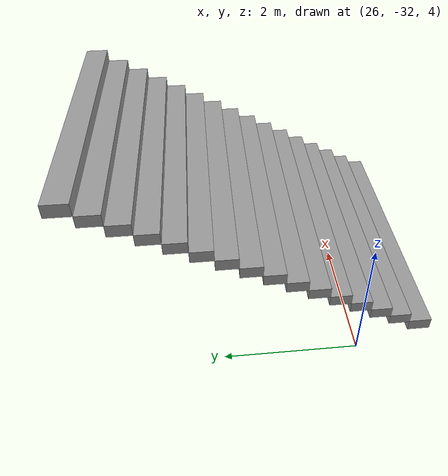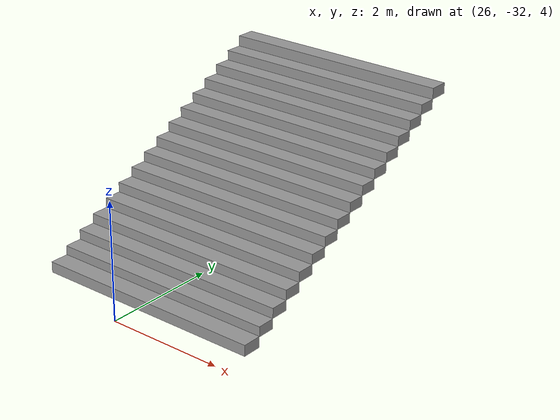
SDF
<sdf version="1.7">
 <world name="world">
  <include><uri>model://sun</uri></include>
  <model name="stairs_new_clone">
   <pose>27.35 -34.334000 5.065 0 -0 1.570796</pose>
   <link name="Stairs">
    <pose>3 1e-06 0 0 -0 0</pose>
    <inertial>
     <mass>1</mass>
     <inertia><ixx>1</ixx><ixy>0</ixy><ixz>0</ixz><iyy>1</iyy><iyz>0</iyz><izz>1</izz></inertia>
    </inertial>
    <visual name="Stairs_Visual_7">
     <pose>0.70875 0 1.09375 0 -0 1.5708</pose>
     <geometry><box><size>3.66 0.28125 0.15625</size></box></geometry>
     <material>
      <script><uri>file://media/materials/scripts/gazebo.material</uri><name>Gazebo/Grey</name></script>
      <ambient>1 1 1 1</ambient>
      <shader type="pixel"><normal_map>__default__</normal_map></shader>
      <diffuse>0.7 0.7 0.7 1</diffuse>
      <specular>0.01 0.01 0.01 1</specular>
      <emissive>0 0 0 1</emissive>
     </material>
     <meta><layer>0</layer></meta>
    </visual>
    <visual name="Stairs_Visual_10">
     <pose>1.5525 0 1.5625 0 -0 1.5708</pose>
     <geometry><box><size>3.66 0.28125 0.15625</size></box></geometry>
     <material>
      <script><uri>file://media/materials/scripts/gazebo.material</uri><name>Gazebo/Grey</name></script>
      <ambient>1 1 1 1</ambient>
      <shader type="pixel"><normal_map>__default__</normal_map></shader>
      <diffuse>0.7 0.7 0.7 1</diffuse>
      <specular>0.01 0.01 0.01 1</specular>
      <emissive>0 0 0 1</emissive>
     </material>
     <meta><layer>0</layer></meta>
    </visual>
    <visual name="Stairs_Visual_11">
     <pose>1.83375 0 1.71875 0 -0 1.5708</pose>
     <geometry><box><size>3.66 0.28125 0.15625</size></box></geometry>
     <material>
      <script><uri>file://media/materials/scripts/gazebo.material</uri><name>Gazebo/Grey</name></script>
      <ambient>1 1 1 1</ambient>
      <shader type="pixel"><normal_map>__default__</normal_map></shader>
      <diffuse>0.7 0.7 0.7 1</diffuse>
      <specular>0.01 0.01 0.01 1</specular>
      <emissive>0 0 0 1</emissive>
     </material>
     <meta><layer>0</layer></meta>
    </visual>
    <visual name="Stairs_Visual_1">
     <pose>-0.97875 0 0.15625 0 -0 1.5708</pose>
     <geometry><box><size>3.66 0.28125 0.15625</size></box></geometry>
     <material>
      <script><uri>file://media/materials/scripts/gazebo.material</uri><name>Gazebo/Grey</name></script>
      <ambient>1 1 1 1</ambient>
      <shader type="pixel"><normal_map>__default__</normal_map></shader>
      <diffuse>0.7 0.7 0.7 1</diffuse>
      <specular>0.01 0.01 0.01 1</specular>
      <emissive>0 0 0 1</emissive>
     </material>
     <meta><layer>0</layer></meta>
    </visual>
    <visual name="Stairs_Visual_8">
     <pose>0.99 0 1.25 0 -0 1.5708</pose>
     <geometry><box><size>3.66 0.28125 0.15625</size></box></geometry>
     <material>
      <script><uri>file://media/materials/scripts/gazebo.material</uri><name>Gazebo/Grey</name></script>
      <ambient>1 1 1 1</ambient>
      <shader type="pixel"><normal_map>__default__</normal_map></shader>
      <diffuse>0.7 0.7 0.7 1</diffuse>
      <specular>0.01 0.01 0.01 1</specular>
      <emissive>0 0 0 1</emissive>
     </material>
     <meta><layer>0</layer></meta>
    </visual>
    <visual name="Stairs_Visual_2">
     <pose>-0.6975 0 0.3125 0 -0 1.5708</pose>
     <geometry><box><size>3.66 0.28125 0.15625</size></box></geometry>
     <material>
      <script><uri>file://media/materials/scripts/gazebo.material</uri><name>Gazebo/Grey</name></script>
      <ambient>1 1 1 1</ambient>
      <shader type="pixel"><normal_map>__default__</normal_map></shader>
      <diffuse>0.7 0.7 0.7 1</diffuse>
      <specular>0.01 0.01 0.01 1</specular>
      <emissive>0 0 0 1</emissive>
     </material>
     <meta><layer>0</layer></meta>
    </visual>
    <visual name="Stairs_Visual_0">
     <pose>-1.27 0 0.005 0 -0 1.5708</pose>
     <geometry><box><size>3.66 0.3 0.17</size></box></geometry>
     <material>
      <script><uri>file://media/materials/scripts/gazebo.material</uri><name>Gazebo/Grey</name></script>
      <ambient>1 1 1 1</ambient>
      <shader type="pixel"><normal_map>__default__</normal_map></shader>
      <diffuse>0.7 0.7 0.7 1</diffuse>
      <specular>0.01 0.01 0.01 1</specular>
      <emissive>0 0 0 1</emissive>
     </material>
     <meta><layer>0</layer></meta>
    </visual>
    <visual name="Stairs_Visual_12">
     <pose>2.115 0 1.875 0 -0 1.5708</pose>
     <geometry><box><size>3.66 0.28125 0.15625</size></box></geometry>
     <material>
      <script><uri>file://media/materials/scripts/gazebo.material</uri><name>Gazebo/Grey</name></script>
      <ambient>1 1 1 1</ambient>
      <shader type="pixel"><normal_map>__default__</normal_map></shader>
      <diffuse>0.7 0.7 0.7 1</diffuse>
      <specular>0.01 0.01 0.01 1</specular>
      <emissive>0 0 0 1</emissive>
     </material>
     <meta><layer>0</layer></meta>
    </visual>
    <visual name="Stairs_Visual_9">
     <pose>1.27125 0 1.40625 0 -0 1.5708</pose>
     <geometry><box><size>3.66 0.28125 0.15625</size></box></geometry>
     <material>
      <script><uri>file://media/materials/scripts/gazebo.material</uri><name>Gazebo/Grey</name></script>
      <ambient>1 1 1 1</ambient>
      <shader type="pixel"><normal_map>__default__</normal_map></shader>
      <diffuse>0.7 0.7 0.7 1</diffuse>
      <specular>0.01 0.01 0.01 1</specular>
      <emissive>0 0 0 1</emissive>
     </material>
     <meta><layer>0</layer></meta>
    </visual>
    <visual name="Stairs_Visual_13">
     <pose>2.39625 0 2.03125 0 -0 1.5708</pose>
     <geometry><box><size>3.66 0.28125 0.15625</size></box></geometry>
     <material>
      <script><uri>file://media/materials/scripts/gazebo.material</uri><name>Gazebo/Grey</name></script>
      <ambient>1 1 1 1</ambient>
      <shader type="pixel"><normal_map>__default__</normal_map></shader>
      <diffuse>0.7 0.7 0.7 1</diffuse>
      <specular>0.01 0.01 0.01 1</specular>
      <emissive>0 0 0 1</emissive>
     </material>
     <meta><layer>0</layer></meta>
    </visual>
    <visual name="Stairs_Visual_4">
     <pose>-0.135 0 0.625 0 -0 1.5708</pose>
     <geometry><box><size>3.66 0.28125 0.15625</size></box></geometry>
     <material>
      <script><uri>file://media/materials/scripts/gazebo.material</uri><name>Gazebo/Grey</name></script>
      <ambient>1 1 1 1</ambient>
      <shader type="pixel"><normal_map>__default__</normal_map></shader>
      <diffuse>0.7 0.7 0.7 1</diffuse>
      <specular>0.01 0.01 0.01 1</specular>
      <emissive>0 0 0 1</emissive>
     </material>
     <meta><layer>0</layer></meta>
    </visual>
    <visual name="Stairs_Visual_5">
     <pose>0.14625 0 0.78125 0 -0 1.5708</pose>
     <geometry><box><size>3.66 0.28125 0.15625</size></box></geometry>
     <material>
      <script><uri>file://media/materials/scripts/gazebo.material</uri><name>Gazebo/Grey</name></script>
      <ambient>1 1 1 1</ambient>
      <shader type="pixel"><normal_map>__default__</normal_map></shader>
      <diffuse>0.7 0.7 0.7 1</diffuse>
      <specular>0.01 0.01 0.01 1</specular>
      <emissive>0 0 0 1</emissive>
     </material>
     <meta><layer>0</layer></meta>
    </visual>
    <visual name="Stairs_Visual_15">
     <pose>2.969 0 2.35 0 -0 1.5708</pose>
     <geometry><box><size>3.66 0.3 0.17</size></box></geometry>
     <material>
      <script><uri>file://media/materials/scripts/gazebo.material</uri><name>Gazebo/Grey</name></script>
      <ambient>1 1 1 1</ambient>
      <shader type="pixel"><normal_map>__default__</normal_map></shader>
      <diffuse>0.7 0.7 0.7 1</diffuse>
      <specular>0.01 0.01 0.01 1</specular>
      <emissive>0 0 0 1</emissive>
     </material>
     <meta><layer>0</layer></meta>
    </visual>
    <visual name="Stairs_Visual_3">
     <pose>-0.41625 0 0.46875 0 -0 1.5708</pose>
     <geometry><box><size>3.66 0.28125 0.15625</size></box></geometry>
     <material>
      <script><uri>file://media/materials/scripts/gazebo.material</uri><name>Gazebo/Grey</name></script>
      <ambient>1 1 1 1</ambient>
      <shader type="pixel"><normal_map>__default__</normal_map></shader>
      <diffuse>0.7 0.7 0.7 1</diffuse>
      <specular>0.01 0.01 0.01 1</specular>
      <emissive>0 0 0 1</emissive>
     </material>
     <meta><layer>0</layer></meta>
    </visual>
    <visual name="Stairs_Visual_6">
     <pose>0.4275 0 0.9375 0 -0 1.5708</pose>
     <geometry><box><size>3.66 0.28125 0.15625</size></box></geometry>
     <material>
      <script><uri>file://media/materials/scripts/gazebo.material</uri><name>Gazebo/Grey</name></script>
      <ambient>1 1 1 1</ambient>
      <shader type="pixel"><normal_map>__default__</normal_map></shader>
      <diffuse>0.7 0.7 0.7 1</diffuse>
      <specular>0.01 0.01 0.01 1</specular>
      <emissive>0 0 0 1</emissive>
     </material>
     <meta><layer>0</layer></meta>
    </visual>
    <visual name="Stairs_Visual_14">
     <pose>2.6775 0 2.1875 0 -0 1.5708</pose>
     <geometry><box><size>3.66 0.28125 0.15625</size></box></geometry>
     <material>
      <script><uri>file://media/materials/scripts/gazebo.material</uri><name>Gazebo/Grey</name></script>
      <ambient>1 1 1 1</ambient>
      <shader type="pixel"><normal_map>__default__</normal_map></shader>
      <diffuse>0.7 0.7 0.7 1</diffuse>
      <specular>0.01 0.01 0.01 1</specular>
      <emissive>0 0 0 1</emissive>
     </material>
     <meta><layer>0</layer></meta>
    </visual>
    <collision name="Stairs_Collision_9">
     <pose>1.27125 0 1.40625 0 -0 1.5708</pose>
     <geometry><box><size>3.66 0.28125 0.15625</size></box></geometry>
     <surface>
      <friction>
       <ode><mu>1</mu><mu2>1</mu2><fdir1>0 0 0</fdir1><slip1>0</slip1><slip2>0</slip2></ode>
       <torsional>
        <coefficient>1</coefficient>
        <patch_radius>0</patch_radius>
        <surface_radius>0</surface_radius>
        <use_patch_radius>1</use_patch_radius>
        <ode><slip>0</slip></ode>
       </torsional>
      </friction>
      <bounce><restitution_coefficient>0</restitution_coefficient><threshold>1e+06</threshold></bounce>
      <contact>
       <collide_without_contact>0</collide_without_contact>
       <collide_without_contact_bitmask>1</collide_without_contact_bitmask>
       <collide_bitmask>1</collide_bitmask>
       <ode>
        <soft_cfm>0</soft_cfm>
        <soft_erp>0.2</soft_erp>
        <kp>1e+13</kp>
        <kd>1</kd>
        <max_vel>0.01</max_vel>
        <min_depth>0</min_depth>
       </ode>
       <bullet>
        <split_impulse>1</split_impulse>
        <split_impulse_penetration_threshold>-0.01</split_impulse_penetration_threshold>
        <soft_cfm>0</soft_cfm>
        <soft_erp>0.2</soft_erp>
        <kp>1e+13</kp>
        <kd>1</kd>
       </bullet>
      </contact>
     </surface>
    </collision>
    <collision name="Stairs_Collision_1">
     <pose>-0.97875 0 0.15625 0 -0 1.5708</pose>
     <geometry><box><size>3.66 0.3 0.1566</size></box></geometry>
     <surface>
      <friction>
       <ode><mu>1</mu><mu2>1</mu2><fdir1>0 0 0</fdir1><slip1>0</slip1><slip2>0</slip2></ode>
       <torsional>
        <coefficient>1</coefficient>
        <patch_radius>0</patch_radius>
        <surface_radius>0</surface_radius>
        <use_patch_radius>1</use_patch_radius>
        <ode><slip>0</slip></ode>
       </torsional>
      </friction>
      <bounce><restitution_coefficient>0</restitution_coefficient><threshold>1e+06</threshold></bounce>
      <contact>
       <collide_without_contact>0</collide_without_contact>
       <collide_without_contact_bitmask>1</collide_without_contact_bitmask>
       <collide_bitmask>1</collide_bitmask>
       <ode>
        <soft_cfm>0</soft_cfm>
        <soft_erp>0.2</soft_erp>
        <kp>1e+13</kp>
        <kd>1</kd>
        <max_vel>0.01</max_vel>
        <min_depth>0</min_depth>
       </ode>
       <bullet>
        <split_impulse>1</split_impulse>
        <split_impulse_penetration_threshold>-0.01</split_impulse_penetration_threshold>
        <soft_cfm>0</soft_cfm>
        <soft_erp>0.2</soft_erp>
        <kp>1e+13</kp>
        <kd>1</kd>
       </bullet>
      </contact>
     </surface>
    </collision>
    <collision name="Stairs_Collision_6">
     <pose>0.4275 0 0.9375 0 -0 1.5708</pose>
     <geometry><box><size>3.66 0.28125 0.15625</size></box></geometry>
     <surface>
      <friction>
       <ode><mu>1</mu><mu2>1</mu2><fdir1>0 0 0</fdir1><slip1>0</slip1><slip2>0</slip2></ode>
       <torsional>
        <coefficient>1</coefficient>
        <patch_radius>0</patch_radius>
        <surface_radius>0</surface_radius>
        <use_patch_radius>1</use_patch_radius>
        <ode><slip>0</slip></ode>
       </torsional>
      </friction>
      <bounce><restitution_coefficient>0</restitution_coefficient><threshold>1e+06</threshold></bounce>
      <contact>
       <collide_without_contact>0</collide_without_contact>
       <collide_without_contact_bitmask>1</collide_without_contact_bitmask>
       <collide_bitmask>1</collide_bitmask>
       <ode>
        <soft_cfm>0</soft_cfm>
        <soft_erp>0.2</soft_erp>
        <kp>1e+13</kp>
        <kd>1</kd>
        <max_vel>0.01</max_vel>
        <min_depth>0</min_depth>
       </ode>
       <bullet>
        <split_impulse>1</split_impulse>
        <split_impulse_penetration_threshold>-0.01</split_impulse_penetration_threshold>
        <soft_cfm>0</soft_cfm>
        <soft_erp>0.2</soft_erp>
        <kp>1e+13</kp>
        <kd>1</kd>
       </bullet>
      </contact>
     </surface>
    </collision>
    <collision name="Stairs_Collision_7">
     <pose>0.70875 0 1.09375 0 -0 1.5708</pose>
     <geometry><box><size>3.66 0.28125 0.15625</size></box></geometry>
     <surface>
      <friction>
       <ode><mu>1</mu><mu2>1</mu2><fdir1>0 0 0</fdir1><slip1>0</slip1><slip2>0</slip2></ode>
       <torsional>
        <coefficient>1</coefficient>
        <patch_radius>0</patch_radius>
        <surface_radius>0</surface_radius>
        <use_patch_radius>1</use_patch_radius>
        <ode><slip>0</slip></ode>
       </torsional>
      </friction>
      <bounce><restitution_coefficient>0</restitution_coefficient><threshold>1e+06</threshold></bounce>
      <contact>
       <collide_without_contact>0</collide_without_contact>
       <collide_without_contact_bitmask>1</collide_without_contact_bitmask>
       <collide_bitmask>1</collide_bitmask>
       <ode>
        <soft_cfm>0</soft_cfm>
        <soft_erp>0.2</soft_erp>
        <kp>1e+13</kp>
        <kd>1</kd>
        <max_vel>0.01</max_vel>
        <min_depth>0</min_depth>
       </ode>
       <bullet>
        <split_impulse>1</split_impulse>
        <split_impulse_penetration_threshold>-0.01</split_impulse_penetration_threshold>
        <soft_cfm>0</soft_cfm>
        <soft_erp>0.2</soft_erp>
        <kp>1e+13</kp>
        <kd>1</kd>
       </bullet>
      </contact>
     </surface>
    </collision>
    <collision name="Stairs_Collision_5">
     <pose>0.14625 0 0.78125 0 -0 1.5708</pose>
     <geometry><box><size>3.66 0.28125 0.15625</size></box></geometry>
     <surface>
      <friction>
       <ode><mu>1</mu><mu2>1</mu2><fdir1>0 0 0</fdir1><slip1>0</slip1><slip2>0</slip2></ode>
       <torsional>
        <coefficient>1</coefficient>
        <patch_radius>0</patch_radius>
        <surface_radius>0</surface_radius>
        <use_patch_radius>1</use_patch_radius>
        <ode><slip>0</slip></ode>
       </torsional>
      </friction>
      <bounce><restitution_coefficient>0</restitution_coefficient><threshold>1e+06</threshold></bounce>
      <contact>
       <collide_without_contact>0</collide_without_contact>
       <collide_without_contact_bitmask>1</collide_without_contact_bitmask>
       <collide_bitmask>1</collide_bitmask>
       <ode>
        <soft_cfm>0</soft_cfm>
        <soft_erp>0.2</soft_erp>
        <kp>1e+13</kp>
        <kd>1</kd>
        <max_vel>0.01</max_vel>
        <min_depth>0</min_depth>
       </ode>
       <bullet>
        <split_impulse>1</split_impulse>
        <split_impulse_penetration_threshold>-0.01</split_impulse_penetration_threshold>
        <soft_cfm>0</soft_cfm>
        <soft_erp>0.2</soft_erp>
        <kp>1e+13</kp>
        <kd>1</kd>
       </bullet>
      </contact>
     </surface>
    </collision>
    <collision name="Stairs_Collision_10">
     <pose>1.5525 0 1.5625 0 -0 1.5708</pose>
     <geometry><box><size>3.66 0.28125 0.15625</size></box></geometry>
     <surface>
      <friction>
       <ode><mu>1</mu><mu2>1</mu2><fdir1>0 0 0</fdir1><slip1>0</slip1><slip2>0</slip2></ode>
       <torsional>
        <coefficient>1</coefficient>
        <patch_radius>0</patch_radius>
        <surface_radius>0</surface_radius>
        <use_patch_radius>1</use_patch_radius>
        <ode><slip>0</slip></ode>
       </torsional>
      </friction>
      <bounce><restitution_coefficient>0</restitution_coefficient><threshold>1e+06</threshold></bounce>
      <contact>
       <collide_without_contact>0</collide_without_contact>
       <collide_without_contact_bitmask>1</collide_without_contact_bitmask>
       <collide_bitmask>1</collide_bitmask>
       <ode>
        <soft_cfm>0</soft_cfm>
        <soft_erp>0.2</soft_erp>
        <kp>1e+13</kp>
        <kd>1</kd>
        <max_vel>0.01</max_vel>
        <min_depth>0</min_depth>
       </ode>
       <bullet>
        <split_impulse>1</split_impulse>
        <split_impulse_penetration_threshold>-0.01</split_impulse_penetration_threshold>
        <soft_cfm>0</soft_cfm>
        <soft_erp>0.2</soft_erp>
        <kp>1e+13</kp>
        <kd>1</kd>
       </bullet>
      </contact>
     </surface>
    </collision>
    <collision name="Stairs_Collision_2">
     <pose>-0.6975 0 0.3125 0 -0 1.5708</pose>
     <geometry><box><size>3.66 0.28125 0.15625</size></box></geometry>
     <surface>
      <friction>
       <ode><mu>1</mu><mu2>1</mu2><fdir1>0 0 0</fdir1><slip1>0</slip1><slip2>0</slip2></ode>
       <torsional>
        <coefficient>1</coefficient>
        <patch_radius>0</patch_radius>
        <surface_radius>0</surface_radius>
        <use_patch_radius>1</use_patch_radius>
        <ode><slip>0</slip></ode>
       </torsional>
      </friction>
      <bounce><restitution_coefficient>0</restitution_coefficient><threshold>1e+06</threshold></bounce>
      <contact>
       <collide_without_contact>0</collide_without_contact>
       <collide_without_contact_bitmask>1</collide_without_contact_bitmask>
       <collide_bitmask>1</collide_bitmask>
       <ode>
        <soft_cfm>0</soft_cfm>
        <soft_erp>0.2</soft_erp>
        <kp>1e+13</kp>
        <kd>1</kd>
        <max_vel>0.01</max_vel>
        <min_depth>0</min_depth>
       </ode>
       <bullet>
        <split_impulse>1</split_impulse>
        <split_impulse_penetration_threshold>-0.01</split_impulse_penetration_threshold>
        <soft_cfm>0</soft_cfm>
        <soft_erp>0.2</soft_erp>
        <kp>1e+13</kp>
        <kd>1</kd>
       </bullet>
      </contact>
     </surface>
    </collision>
    <collision name="Stairs_Collision_8">
     <pose>0.99 0 1.25 0 -0 1.5708</pose>
     <geometry><box><size>3.66 0.28125 0.15625</size></box></geometry>
     <surface>
      <friction>
       <ode><mu>1</mu><mu2>1</mu2><fdir1>0 0 0</fdir1><slip1>0</slip1><slip2>0</slip2></ode>
       <torsional>
        <coefficient>1</coefficient>
        <patch_radius>0</patch_radius>
        <surface_radius>0</surface_radius>
        <use_patch_radius>1</use_patch_radius>
        <ode><slip>0</slip></ode>
       </torsional>
      </friction>
      <bounce><restitution_coefficient>0</restitution_coefficient><threshold>1e+06</threshold></bounce>
      <contact>
       <collide_without_contact>0</collide_without_contact>
       <collide_without_contact_bitmask>1</collide_without_contact_bitmask>
       <collide_bitmask>1</collide_bitmask>
       <ode>
        <soft_cfm>0</soft_cfm>
        <soft_erp>0.2</soft_erp>
        <kp>1e+13</kp>
        <kd>1</kd>
        <max_vel>0.01</max_vel>
        <min_depth>0</min_depth>
       </ode>
       <bullet>
        <split_impulse>1</split_impulse>
        <split_impulse_penetration_threshold>-0.01</split_impulse_penetration_threshold>
        <soft_cfm>0</soft_cfm>
        <soft_erp>0.2</soft_erp>
        <kp>1e+13</kp>
        <kd>1</kd>
       </bullet>
      </contact>
     </surface>
    </collision>
    <collision name="Stairs_Collision_4">
     <pose>-0.135 0 0.625 0 -0 1.5708</pose>
     <geometry><box><size>3.66 0.30125 0.15625</size></box></geometry>
     <surface>
      <friction>
       <ode><mu>1</mu><mu2>1</mu2><fdir1>0 0 0</fdir1><slip1>0</slip1><slip2>0</slip2></ode>
       <torsional>
        <coefficient>1</coefficient>
        <patch_radius>0</patch_radius>
        <surface_radius>0</surface_radius>
        <use_patch_radius>1</use_patch_radius>
        <ode><slip>0</slip></ode>
       </torsional>
      </friction>
      <bounce><restitution_coefficient>0</restitution_coefficient><threshold>1e+06</threshold></bounce>
      <contact>
       <collide_without_contact>0</collide_without_contact>
       <collide_without_contact_bitmask>1</collide_without_contact_bitmask>
       <collide_bitmask>1</collide_bitmask>
       <ode>
        <soft_cfm>0</soft_cfm>
        <soft_erp>0.2</soft_erp>
        <kp>1e+13</kp>
        <kd>1</kd>
        <max_vel>0.01</max_vel>
        <min_depth>0</min_depth>
       </ode>
       <bullet>
        <split_impulse>1</split_impulse>
        <split_impulse_penetration_threshold>-0.01</split_impulse_penetration_threshold>
        <soft_cfm>0</soft_cfm>
        <soft_erp>0.2</soft_erp>
        <kp>1e+13</kp>
        <kd>1</kd>
       </bullet>
      </contact>
     </surface>
    </collision>
    <collision name="Stairs_Collision_13">
     <pose>2.39625 0 2.03125 0 -0 1.5708</pose>
     <geometry><box><size>3.66 0.28125 0.15625</size></box></geometry>
     <surface>
      <friction>
       <ode><mu>1</mu><mu2>1</mu2><fdir1>0 0 0</fdir1><slip1>0</slip1><slip2>0</slip2></ode>
       <torsional>
        <coefficient>1</coefficient>
        <patch_radius>0</patch_radius>
        <surface_radius>0</surface_radius>
        <use_patch_radius>1</use_patch_radius>
        <ode><slip>0</slip></ode>
       </torsional>
      </friction>
      <bounce><restitution_coefficient>0</restitution_coefficient><threshold>1e+06</threshold></bounce>
      <contact>
       <collide_without_contact>0</collide_without_contact>
       <collide_without_contact_bitmask>1</collide_without_contact_bitmask>
       <collide_bitmask>1</collide_bitmask>
       <ode>
        <soft_cfm>0</soft_cfm>
        <soft_erp>0.2</soft_erp>
        <kp>1e+13</kp>
        <kd>1</kd>
        <max_vel>0.01</max_vel>
        <min_depth>0</min_depth>
       </ode>
       <bullet>
        <split_impulse>1</split_impulse>
        <split_impulse_penetration_threshold>-0.01</split_impulse_penetration_threshold>
        <soft_cfm>0</soft_cfm>
        <soft_erp>0.2</soft_erp>
        <kp>1e+13</kp>
        <kd>1</kd>
       </bullet>
      </contact>
     </surface>
    </collision>
    <collision name="Stairs_Collision_11">
     <pose>1.83375 0 1.71875 0 -0 1.5708</pose>
     <geometry><box><size>3.66 0.28125 0.15625</size></box></geometry>
     <surface>
      <friction>
       <ode><mu>1</mu><mu2>1</mu2><fdir1>0 0 0</fdir1><slip1>0</slip1><slip2>0</slip2></ode>
       <torsional>
        <coefficient>1</coefficient>
        <patch_radius>0</patch_radius>
        <surface_radius>0</surface_radius>
        <use_patch_radius>1</use_patch_radius>
        <ode><slip>0</slip></ode>
       </torsional>
      </friction>
      <bounce><restitution_coefficient>0</restitution_coefficient><threshold>1e+06</threshold></bounce>
      <contact>
       <collide_without_contact>0</collide_without_contact>
       <collide_without_contact_bitmask>1</collide_without_contact_bitmask>
       <collide_bitmask>1</collide_bitmask>
       <ode>
        <soft_cfm>0</soft_cfm>
        <soft_erp>0.2</soft_erp>
        <kp>1e+13</kp>
        <kd>1</kd>
        <max_vel>0.01</max_vel>
        <min_depth>0</min_depth>
       </ode>
       <bullet>
        <split_impulse>1</split_impulse>
        <split_impulse_penetration_threshold>-0.01</split_impulse_penetration_threshold>
        <soft_cfm>0</soft_cfm>
        <soft_erp>0.2</soft_erp>
        <kp>1e+13</kp>
        <kd>1</kd>
       </bullet>
      </contact>
     </surface>
    </collision>
    <collision name="Stairs_Collision_0">
     <pose>-1.27 0 -0.005 0 -0 1.5708</pose>
     <geometry><box><size>3.66 0.3 0.2</size></box></geometry>
     <surface>
      <friction>
       <ode><mu>1</mu><mu2>1</mu2><fdir1>0 0 0</fdir1><slip1>0</slip1><slip2>0</slip2></ode>
       <torsional>
        <coefficient>1</coefficient>
        <patch_radius>0</patch_radius>
        <surface_radius>0</surface_radius>
        <use_patch_radius>1</use_patch_radius>
        <ode><slip>0</slip></ode>
       </torsional>
      </friction>
      <bounce><restitution_coefficient>0</restitution_coefficient><threshold>1e+06</threshold></bounce>
      <contact>
       <collide_without_contact>0</collide_without_contact>
       <collide_without_contact_bitmask>1</collide_without_contact_bitmask>
       <collide_bitmask>1</collide_bitmask>
       <ode>
        <soft_cfm>0</soft_cfm>
        <soft_erp>0.2</soft_erp>
        <kp>1e+13</kp>
        <kd>1</kd>
        <max_vel>0.01</max_vel>
        <min_depth>0</min_depth>
       </ode>
       <bullet>
        <split_impulse>1</split_impulse>
        <split_impulse_penetration_threshold>-0.01</split_impulse_penetration_threshold>
        <soft_cfm>0</soft_cfm>
        <soft_erp>0.2</soft_erp>
        <kp>1e+13</kp>
        <kd>1</kd>
       </bullet>
      </contact>
     </surface>
    </collision>
    <collision name="Stairs_Collision_3">
     <pose>-0.41625 0 0.46875 0 -0 1.5708</pose>
     <geometry><box><size>3.66 0.28125 0.15625</size></box></geometry>
     <surface>
      <friction>
       <ode><mu>1</mu><mu2>1</mu2><fdir1>0 0 0</fdir1><slip1>0</slip1><slip2>0</slip2></ode>
       <torsional>
        <coefficient>1</coefficient>
        <patch_radius>0</patch_radius>
        <surface_radius>0</surface_radius>
        <use_patch_radius>1</use_patch_radius>
        <ode><slip>0</slip></ode>
       </torsional>
      </friction>
      <bounce><restitution_coefficient>0</restitution_coefficient><threshold>1e+06</threshold></bounce>
      <contact>
       <collide_without_contact>0</collide_without_contact>
       <collide_without_contact_bitmask>1</collide_without_contact_bitmask>
       <collide_bitmask>1</collide_bitmask>
       <ode>
        <soft_cfm>0</soft_cfm>
        <soft_erp>0.2</soft_erp>
        <kp>1e+13</kp>
        <kd>1</kd>
        <max_vel>0.01</max_vel>
        <min_depth>0</min_depth>
       </ode>
       <bullet>
        <split_impulse>1</split_impulse>
        <split_impulse_penetration_threshold>-0.01</split_impulse_penetration_threshold>
        <soft_cfm>0</soft_cfm>
        <soft_erp>0.2</soft_erp>
        <kp>1e+13</kp>
        <kd>1</kd>
       </bullet>
      </contact>
     </surface>
    </collision>
    <collision name="Stairs_Collision_12">
     <pose>2.115 0 1.875 0 -0 1.5708</pose>
     <geometry><box><size>3.66 0.28125 0.15625</size></box></geometry>
     <surface>
      <friction>
       <ode><mu>1</mu><mu2>1</mu2><fdir1>0 0 0</fdir1><slip1>0</slip1><slip2>0</slip2></ode>
       <torsional>
        <coefficient>1</coefficient>
        <patch_radius>0</patch_radius>
        <surface_radius>0</surface_radius>
        <use_patch_radius>1</use_patch_radius>
        <ode><slip>0</slip></ode>
       </torsional>
      </friction>
      <bounce><restitution_coefficient>0</restitution_coefficient><threshold>1e+06</threshold></bounce>
      <contact>
       <collide_without_contact>0</collide_without_contact>
       <collide_without_contact_bitmask>1</collide_without_contact_bitmask>
       <collide_bitmask>1</collide_bitmask>
       <ode>
        <soft_cfm>0</soft_cfm>
        <soft_erp>0.2</soft_erp>
        <kp>1e+13</kp>
        <kd>1</kd>
        <max_vel>0.01</max_vel>
        <min_depth>0</min_depth>
       </ode>
       <bullet>
        <split_impulse>1</split_impulse>
        <split_impulse_penetration_threshold>-0.01</split_impulse_penetration_threshold>
        <soft_cfm>0</soft_cfm>
        <soft_erp>0.2</soft_erp>
        <kp>1e+13</kp>
        <kd>1</kd>
       </bullet>
      </contact>
     </surface>
    </collision>
    <collision name="Stairs_Collision_14">
     <pose>2.6775 0 2.1875 0 -0 1.5708</pose>
     <geometry><box><size>3.66 0.28125 0.15625</size></box></geometry>
     <surface>
      <friction>
       <ode><mu>1</mu><mu2>1</mu2><fdir1>0 0 0</fdir1><slip1>0</slip1><slip2>0</slip2></ode>
       <torsional>
        <coefficient>1</coefficient>
        <patch_radius>0</patch_radius>
        <surface_radius>0</surface_radius>
        <use_patch_radius>1</use_patch_radius>
        <ode><slip>0</slip></ode>
       </torsional>
      </friction>
      <bounce><restitution_coefficient>0</restitution_coefficient><threshold>1e+06</threshold></bounce>
      <contact>
       <collide_without_contact>0</collide_without_contact>
       <collide_without_contact_bitmask>1</collide_without_contact_bitmask>
       <collide_bitmask>1</collide_bitmask>
       <ode>
        <soft_cfm>0</soft_cfm>
        <soft_erp>0.2</soft_erp>
        <kp>1e+13</kp>
        <kd>1</kd>
        <max_vel>0.01</max_vel>
        <min_depth>0</min_depth>
       </ode>
       <bullet>
        <split_impulse>1</split_impulse>
        <split_impulse_penetration_threshold>-0.01</split_impulse_penetration_threshold>
        <soft_cfm>0</soft_cfm>
        <soft_erp>0.2</soft_erp>
        <kp>1e+13</kp>
        <kd>1</kd>
       </bullet>
      </contact>
     </surface>
    </collision>
    <collision name="Stairs_Collision_15">
     <pose>2.969 0 2.35 0 -0 1.5708</pose>
     <geometry><box><size>3.66 0.3 0.17</size></box></geometry>
     <surface>
      <friction>
       <ode><mu>1</mu><mu2>1</mu2><fdir1>0 0 0</fdir1><slip1>0</slip1><slip2>0</slip2></ode>
       <torsional>
        <coefficient>1</coefficient>
        <patch_radius>0</patch_radius>
        <surface_radius>0</surface_radius>
        <use_patch_radius>1</use_patch_radius>
        <ode><slip>0</slip></ode>
       </torsional>
      </friction>
      <bounce><restitution_coefficient>0</restitution_coefficient><threshold>1e+06</threshold></bounce>
      <contact>
       <collide_without_contact>0</collide_without_contact>
       <collide_without_contact_bitmask>1</collide_without_contact_bitmask>
       <collide_bitmask>1</collide_bitmask>
       <ode>
        <soft_cfm>0</soft_cfm>
        <soft_erp>0.2</soft_erp>
        <kp>1e+13</kp>
        <kd>1</kd>
        <max_vel>0.01</max_vel>
        <min_depth>0</min_depth>
       </ode>
       <bullet>
        <split_impulse>1</split_impulse>
        <split_impulse_penetration_threshold>-0.01</split_impulse_penetration_threshold>
        <soft_cfm>0</soft_cfm>
        <soft_erp>0.2</soft_erp>
        <kp>1e+13</kp>
        <kd>1</kd>
       </bullet>
      </contact>
     </surface>
    </collision>
    <scale>1 1 1</scale>
   </link>
   <static>1</static>
   <pose>31.1688 -29.9779 0.065 0 -0 1.5708</pose>
  </model>
 </world>
</sdf>
